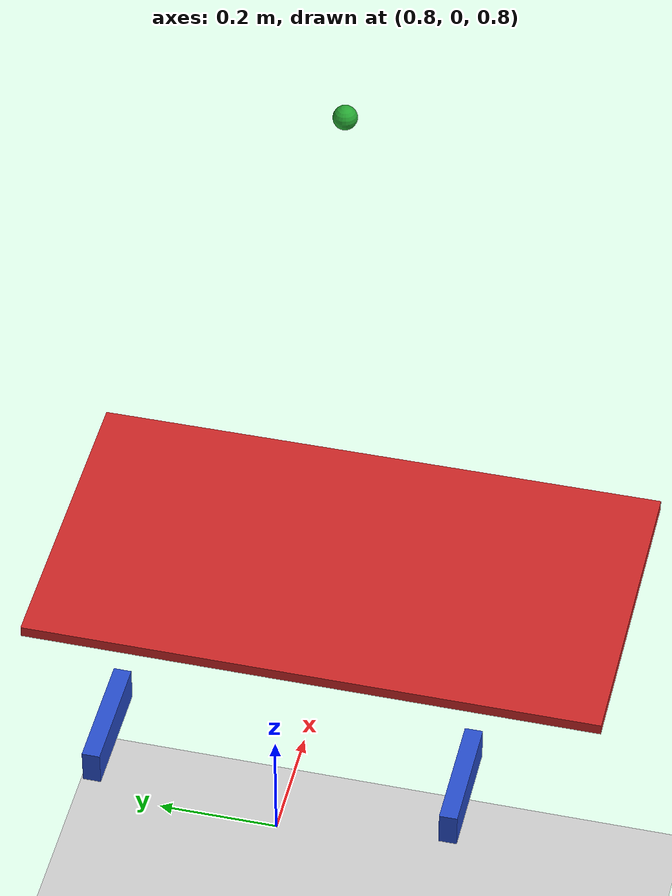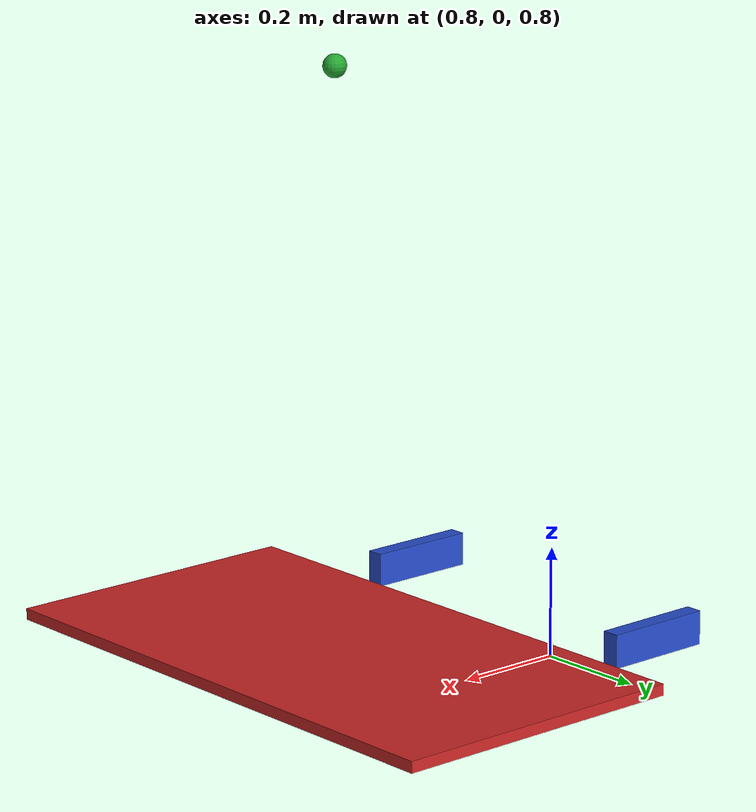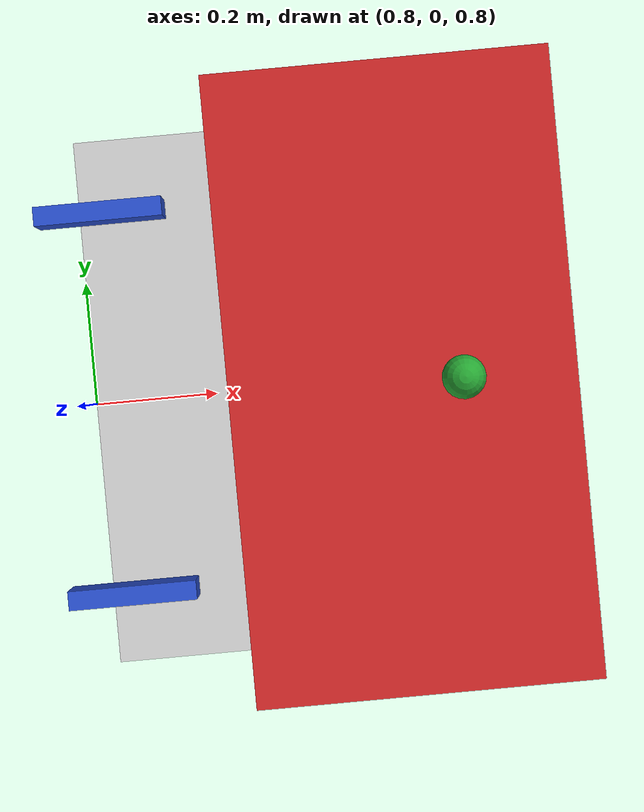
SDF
<sdf version="1.6">
 <world name="default">
  <model name="ground_plane">
   <static>1</static>
   <link name="link">
    <collision name="collision">
     <geometry><plane><normal>0 0 1</normal><size>100 100</size></plane></geometry>
     <surface>
      <contact><collide_bitmask>65535</collide_bitmask></contact>
      <friction><ode><mu>100</mu><mu2>50</mu2></ode></friction>
     </surface>
    </collision>
    <visual name="visual">
     <cast_shadows>0</cast_shadows>
     <geometry><plane><normal>0 0 1</normal><size>100 100</size></plane></geometry>
     <material>
      <script><uri>file://media/materials/scripts/gazebo.material</uri><name>Gazebo/Grey</name></script>
     </material>
    </visual>
   </link>
  </model>
  <light name="sun" type="directional">
   <pose>0 0 10 0 -0 0</pose>
   <diffuse>0.8 0.8 0.8 1</diffuse>
   <specular>0.2 0.2 0.2 1</specular>
   <attenuation>
    <range>1000</range>
    <constant>0.9</constant>
    <linear>0.01</linear>
    <quadratic>0.001</quadratic>
   </attenuation>
   <direction>-0.5 0.1 -0.9</direction>
  </light>
  <physics name="default_physics" default="0" type="ode">
   <real_time_update_rate>1000</real_time_update_rate>
   <max_step_size>0.001</max_step_size>
   <real_time_factor>1</real_time_factor>
  </physics>
  <gravity>0 0 -0.1</gravity>
  <magnetic_field>6e-06 2.3e-05 -4.2e-05</magnetic_field>
  <atmosphere type="adiabatic"/>
  <scene><ambient>0.4 0.4 0.4 1</ambient><background>0.7 0.7 0.7 1</background><shadows>1</shadows></scene>
  <spherical_coordinates>
   <surface_model>EARTH_WGS84</surface_model>
   <latitude_deg>0</latitude_deg>
   <longitude_deg>0</longitude_deg>
   <elevation>0</elevation>
   <heading_deg>0</heading_deg>
  </spherical_coordinates>
  <model name="bouncy_ball_final_1">
   <link name="link_3">
    <inertial>
     <mass>0.005</mass>
     <inertia>
      <ixx>1.33e-06</ixx>
      <ixy>0</ixy>
      <ixz>0</ixz>
      <iyy>1.33e-06</iyy>
      <iyz>0</iyz>
      <izz>1.33e-06</izz>
     </inertia>
    </inertial>
    <visual name="visual">
     <geometry><sphere><radius>0.02</radius></sphere></geometry>
     <material>
      <lighting>1</lighting>
      <script><uri>file://media/materials/scripts/gazebo.material</uri><name>Gazebo/Green</name></script>
      <shader type="pixel"><normal_map>__default__</normal_map></shader>
      <ambient>0 1 0 1</ambient>
      <diffuse>0.7 0.7 0.7 1</diffuse>
      <specular>0.01 0.01 0.01 1</specular>
      <emissive>0 0 0 1</emissive>
     </material>
    </visual>
    <collision name="collision">
     <geometry><sphere><radius>0.02</radius></sphere></geometry>
     <surface>
      <friction>
       <ode><mu>1</mu><mu2>1</mu2><fdir1>0 0 0</fdir1><slip1>0</slip1><slip2>0</slip2></ode>
       <torsional>
        <coefficient>1</coefficient>
        <patch_radius>0</patch_radius>
        <surface_radius>0</surface_radius>
        <use_patch_radius>1</use_patch_radius>
        <ode><slip>0</slip></ode>
       </torsional>
      </friction>
      <bounce><restitution_coefficient>0.95</restitution_coefficient><threshold>0.01</threshold></bounce>
      <contact>
       <collide_without_contact>0</collide_without_contact>
       <collide_without_contact_bitmask>1</collide_without_contact_bitmask>
       <collide_bitmask>1</collide_bitmask>
       <ode>
        <soft_cfm>0</soft_cfm>
        <soft_erp>0.2</soft_erp>
        <kp>1e+13</kp>
        <kd>1</kd>
        <max_vel>10</max_vel>
        <min_depth>0</min_depth>
       </ode>
       <bullet>
        <split_impulse>1</split_impulse>
        <split_impulse_penetration_threshold>-0.01</split_impulse_penetration_threshold>
        <soft_cfm>0</soft_cfm>
        <soft_erp>0.2</soft_erp>
        <kp>1e+13</kp>
        <kd>1</kd>
       </bullet>
      </contact>
     </surface>
    </collision>
   </link>
   <static>0</static>
   <pose>1.3 0 1.91673 0 -0 0</pose>
  </model>
  <model name="wooden_board_handle_final_modphysics_1">
   <link name="link_0">
    <inertial>
     <mass>10</mass>
     <inertia><ixx>0.8337</ixx><ixy>0</ixy><ixz>0</ixz><iyy>0.2524</iyy><iyz>0</iyz><izz>1.0854</izz></inertia>
    </inertial>
    <gravity>0</gravity>
    <visual name="visual">
     <geometry><box><size>0.55 1 0.02</size></box></geometry>
     <material>
      <lighting>1</lighting>
      <script><uri>file://media/materials/scripts/gazebo.material</uri><name>Gazebo/Red</name></script>
      <shader type="pixel"><normal_map>__default__</normal_map></shader>
      <ambient>1 0 0 1</ambient>
      <diffuse>0.7 0.7 0.7 1</diffuse>
      <specular>0.01 0.01 0.01 1</specular>
      <emissive>0 0 0 1</emissive>
     </material>
    </visual>
    <collision name="collision">
     <geometry><box><size>0.55 1 0.02</size></box></geometry>
     <surface>
      <friction>
       <ode><mu>0</mu><mu2>0</mu2><fdir1>0 0 0</fdir1><slip1>0</slip1><slip2>0</slip2></ode>
       <torsional>
        <coefficient>1</coefficient>
        <patch_radius>0</patch_radius>
        <surface_radius>0</surface_radius>
        <use_patch_radius>1</use_patch_radius>
        <ode><slip>0</slip></ode>
       </torsional>
      </friction>
      <bounce><restitution_coefficient>0.95</restitution_coefficient><threshold>0.01</threshold></bounce>
      <contact>
       <collide_without_contact>0</collide_without_contact>
       <collide_without_contact_bitmask>1</collide_without_contact_bitmask>
       <collide_bitmask>1</collide_bitmask>
       <ode>
        <soft_cfm>0</soft_cfm>
        <soft_erp>0.2</soft_erp>
        <kp>1e+13</kp>
        <kd>1</kd>
        <max_vel>10</max_vel>
        <min_depth>0</min_depth>
       </ode>
       <bullet>
        <split_impulse>1</split_impulse>
        <split_impulse_penetration_threshold>-0.01</split_impulse_penetration_threshold>
        <soft_cfm>0</soft_cfm>
        <soft_erp>0.2</soft_erp>
        <kp>1e+13</kp>
        <kd>1</kd>
       </bullet>
      </contact>
     </surface>
    </collision>
   </link>
   <link name="link_2">
    <pose>-0.45 -0.3 0 0 -0 0</pose>
    <inertial>
     <mass>1</mass>
     <inertia>
      <ixx>0.000375</ixx>
      <ixy>0</ixy>
      <ixz>0</ixz>
      <iyy>0.003633</iyy>
      <iyz>0</iyz>
      <izz>0.003408</izz>
     </inertia>
    </inertial>
    <gravity>0</gravity>
    <visual name="visual">
     <geometry><box><size>0.2 0.03 0.06</size></box></geometry>
     <material>
      <lighting>1</lighting>
      <script><uri>file://media/materials/scripts/gazebo.material</uri><name>Gazebo/Blue</name></script>
      <shader type="pixel"><normal_map>__default__</normal_map></shader>
      <ambient>0 0 1 1</ambient>
      <diffuse>0.7 0.7 0.7 1</diffuse>
      <specular>0.01 0.01 0.01 1</specular>
      <emissive>0 0 0 1</emissive>
     </material>
    </visual>
    <collision name="collision">
     <geometry><box><size>0.2 0.03 0.06</size></box></geometry>
     <surface>
      <friction>
       <ode><mu>2000</mu><mu2>2000</mu2><fdir1>1 1 1</fdir1><slip1>0</slip1><slip2>0</slip2></ode>
       <torsional>
        <coefficient>1</coefficient>
        <patch_radius>0</patch_radius>
        <surface_radius>0</surface_radius>
        <use_patch_radius>1</use_patch_radius>
        <ode><slip>0</slip></ode>
       </torsional>
      </friction>
      <bounce><restitution_coefficient>0</restitution_coefficient><threshold>1e+06</threshold></bounce>
      <contact>
       <collide_without_contact>0</collide_without_contact>
       <collide_without_contact_bitmask>1</collide_without_contact_bitmask>
       <collide_bitmask>1</collide_bitmask>
       <ode>
        <soft_cfm>0</soft_cfm>
        <soft_erp>0.2</soft_erp>
        <kp>100000</kp>
        <kd>1</kd>
        <max_vel>0.01</max_vel>
        <min_depth>0.005</min_depth>
       </ode>
       <bullet>
        <split_impulse>1</split_impulse>
        <split_impulse_penetration_threshold>-0.01</split_impulse_penetration_threshold>
        <soft_cfm>0</soft_cfm>
        <soft_erp>0.2</soft_erp>
        <kp>100000</kp>
        <kd>1</kd>
       </bullet>
      </contact>
     </surface>
    </collision>
   </link>
   <link name="link_2_clone">
    <pose>-0.45 0.3 0 0 -0 0</pose>
    <inertial>
     <mass>1</mass>
     <inertia>
      <ixx>0.000375</ixx>
      <ixy>0</ixy>
      <ixz>0</ixz>
      <iyy>0.003633</iyy>
      <iyz>0</iyz>
      <izz>0.003408</izz>
     </inertia>
    </inertial>
    <gravity>0</gravity>
    <visual name="visual">
     <geometry><box><size>0.2 0.03 0.06</size></box></geometry>
     <material>
      <lighting>1</lighting>
      <script><uri>file://media/materials/scripts/gazebo.material</uri><name>Gazebo/Blue</name></script>
      <shader type="pixel"><normal_map>__default__</normal_map></shader>
      <ambient>0 0 1 1</ambient>
      <diffuse>0.7 0.7 0.7 1</diffuse>
      <specular>0.01 0.01 0.01 1</specular>
      <emissive>0 0 0 1</emissive>
     </material>
    </visual>
    <collision name="collision">
     <geometry><box><size>0.2 0.03 0.06</size></box></geometry>
     <surface>
      <friction>
       <ode><mu>2000</mu><mu2>2000</mu2><fdir1>1 1 1</fdir1><slip1>0</slip1><slip2>0</slip2></ode>
       <torsional>
        <coefficient>1</coefficient>
        <patch_radius>0</patch_radius>
        <surface_radius>0</surface_radius>
        <use_patch_radius>1</use_patch_radius>
        <ode><slip>0</slip></ode>
       </torsional>
      </friction>
      <bounce><restitution_coefficient>0</restitution_coefficient><threshold>1e+06</threshold></bounce>
      <contact>
       <collide_without_contact>0</collide_without_contact>
       <collide_without_contact_bitmask>1</collide_without_contact_bitmask>
       <collide_bitmask>1</collide_bitmask>
       <ode>
        <soft_cfm>0</soft_cfm>
        <soft_erp>0.2</soft_erp>
        <kp>100000</kp>
        <kd>1</kd>
        <max_vel>0.01</max_vel>
        <min_depth>0.005</min_depth>
       </ode>
       <bullet>
        <split_impulse>1</split_impulse>
        <split_impulse_penetration_threshold>-0.01</split_impulse_penetration_threshold>
        <soft_cfm>0</soft_cfm>
        <soft_erp>0.2</soft_erp>
        <kp>100000</kp>
        <kd>1</kd>
       </bullet>
      </contact>
     </surface>
    </collision>
   </link>
   <joint name="link_0_JOINT_0" type="revolute">
    <parent>link_0</parent>
    <child>link_2</child>
    <axis>
     <xyz>1 0 0</xyz>
     <use_parent_model_frame>0</use_parent_model_frame>
     <limit><lower>-0.1</lower><upper>0.1</upper><effort>0</effort><velocity>0</velocity></limit>
     <dynamics>
      <spring_reference>0</spring_reference>
      <spring_stiffness>0</spring_stiffness>
      <damping>0</damping>
      <friction>0</friction>
     </dynamics>
    </axis>
    <physics>
     <ode><limit><cfm>0</cfm><erp>0.2</erp></limit><suspension><cfm>0</cfm><erp>0.2</erp></suspension></ode>
    </physics>
   </joint>
   <joint name="link_0_JOINT_1" type="revolute">
    <parent>link_0</parent>
    <child>link_2_clone</child>
    <axis>
     <xyz>1 0 0</xyz>
     <use_parent_model_frame>0</use_parent_model_frame>
     <limit><lower>-0.1</lower><upper>0.1</upper><effort>0</effort><velocity>0</velocity></limit>
     <dynamics>
      <spring_reference>0</spring_reference>
      <spring_stiffness>0</spring_stiffness>
      <damping>0</damping>
      <friction>0</friction>
     </dynamics>
    </axis>
    <physics>
     <ode><limit><cfm>0</cfm><erp>0.2</erp></limit><suspension><cfm>0</cfm><erp>0.2</erp></suspension></ode>
    </physics>
   </joint>
   <static>0</static>
   <pose>1.3 0 0.922 0 -0 0</pose>
  </model>
 </world>
</sdf>
